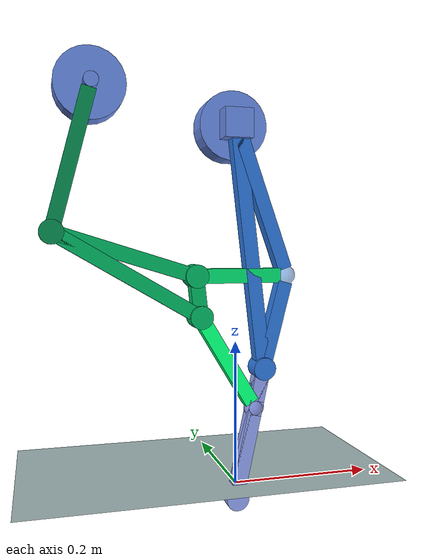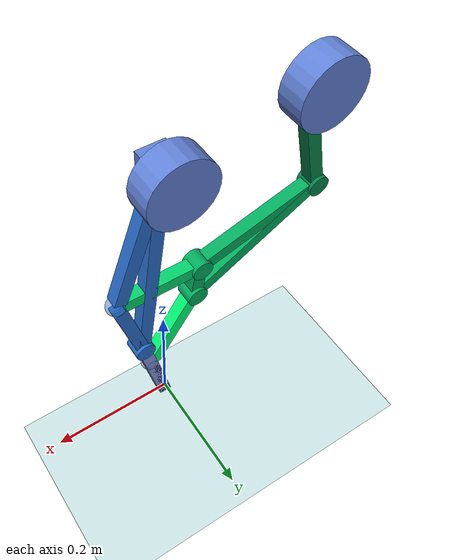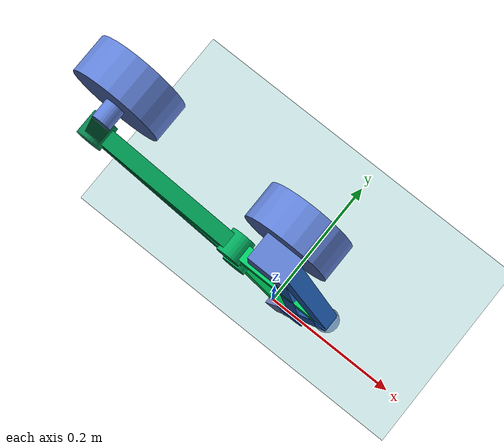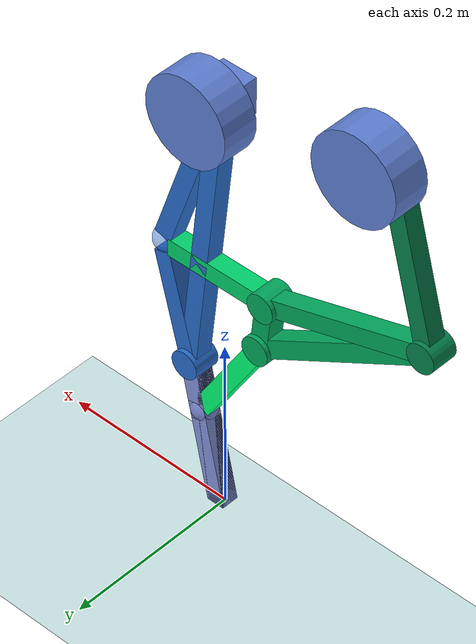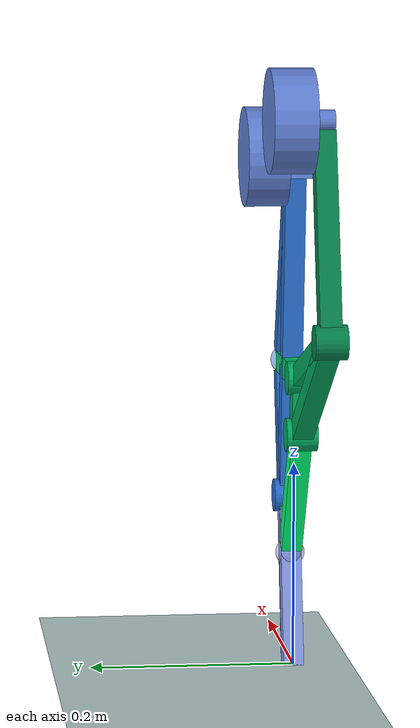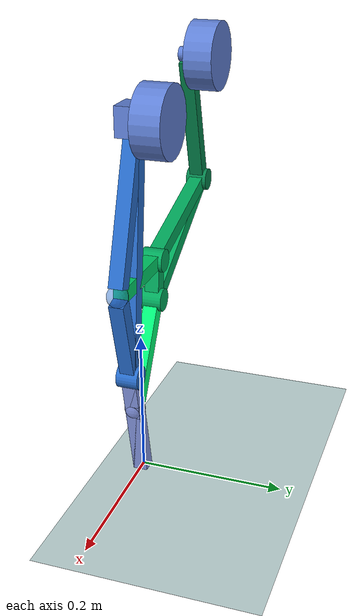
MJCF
<?xml version="1.0" encoding="utf-8"?>
<mujoco model="robot_2">
  <compiler angle="radian" inertiafromgeom="true" coordinate="local" />
  <option timestep="0.01" gravity="0 0 -9.81" integrator="RK4" />
  <size njmax="500" nconmax="100" />
  <worldbody>
    <geom name="floor" type="plane" size="10 10 0.1" pos="0 0 0" rgba="0.8 0.9 0.9 1" />
    <light name="light1" pos="0 0 3" dir="0 0 -1" directional="true" />
    <body name="robot_root" pos="0 0 0.5" quat="1 0 0 0">
      <body name="G">
        <geom name="G_vis0" type="box" rgba="0.37254901960784315 0.5019607843137255 0.8352941176470589 1.0" contype="1" conaffinity="1" pos="0.0 0.0 0.0" quat="1.0 0.0 0.0 0.0" size="0.02 0.02 0.02" />
        <inertial pos="0.0 0.0 0.0" mass="0.010434248887524934" diaginertia="2.782466370006649e-06 2.782466370006649e-06 2.782466370006649e-06" />
        <body name="L6" pos="0.0 0.0 0.0" quat="0.05740672490601135 5.76162120280019e-17 0.9983508741597643 5.76162120280019e-17">
          <joint name="Main_ground" type="hinge" axis="0 1 0" range="-3.141592653589793 3.141592653589793" damping="0.1" />
          <geom name="L6_vis0" type="box" rgba="0.1568627450980392 0.42745098039215684 0.8 1.0" contype="1" conaffinity="1" pos="8.008223628835724e-17 0.0 0.17012128026793125" quat="1.0 0.0 0.0 0.0" size="0.009999999776482582 0.009999999776482582 0.16012128049144866" />
          <geom name="L6_vis1" type="box" rgba="0.1568627450980392 0.42745098039215684 0.8 1.0" contype="1" conaffinity="1" pos="-0.024327343078314124 0.0 0.1071764065687967" quat="0.9937790602856788 0.0 -0.1113695619894114 0.0" size="0.009999999776482582 0.009999999776482582 0.09990269239368224" />
          <geom name="L6_vis2" type="box" rgba="0.1568627450980392 0.42745098039215684 0.8 1.0" contype="1" conaffinity="1" pos="-0.024327343078314044 0.0 0.27729768683672795" quat="0.18335811086497625 -4.896677205692733e-17 -0.9830461856800152 4.896677205692733e-17" size="0.009999999776482582 0.009999999776482582 0.05748241827629619" />
          <inertial pos="-0.01622 0.0 0.18487" mass="0.16173688658481772" diaginertia="0.02191345675655164 0.0223761845142554 0.0004735102163274033" />
          <body name="L7" pos="1.6016447257671449e-16 0.0 0.3402425605358625" quat="0.9867473260080689 0.0 0.1622643356253175 0.0">
            <joint name="Main_knee" type="hinge" axis="0 1 0" range="-3.141592653589793 3.141592653589793" damping="0.1" />
            <geom name="L7_vis0" type="box" rgba="0.5176470588235295 0.5843137254901961 0.8705882352941177 1.0" contype="1" conaffinity="1" pos="-6.938893903907228e-18 0.0 0.028385080257945366" quat="1.0 0.0 0.0 0.0" size="0.009999999776482582 0.009999999776482582 0.018385080481462784" />
            <geom name="L7_vis1" type="box" rgba="0.5176470588235295 0.5843137254901961 0.8705882352941177 1.0" contype="1" conaffinity="1" pos="-3.469446951953614e-17 0.0 0.12145091716924164" quat="1.0 0.0 0.0 0.0" size="0.009999999776482582 0.009999999776482582 0.054680756876868325" />
            <geom name="L7_vis2" type="box" rgba="0.5176470588235295 0.5843137254901961 0.8705882352941177 1.0" contype="1" conaffinity="1" pos="-2.7755575615628914e-17 0.0 0.09306583691129627" quat="1.0 0.0 0.0 0.0" size="0.009999999776482582 0.009999999776482582 0.08306583713481369" />
            <inertial pos="-0.0 0.0 0.08097" mass="0.04839422216852606" diaginertia="0.012721123994364246 0.012745589044769032 2.7691331737280837e-05" />
            <body name="EE" pos="-5.551115123125783e-17 0.0 0.18613167382259255" quat="0.10535080902060162 5.444071275446129e-17 0.9944351195722648 5.444071275446129e-17">
              <geom name="EE_vis0" type="sphere" rgba="0.6431372549019608 0.6666666666666666 0.9058823529411765 1.0" contype="1" conaffinity="1" pos="0.0 0.0 0.0" quat="1.0 0.0 0.0 0.0" size="0.002142857142857143" />
              <inertial pos="0.0 0.0 0.0" mass="2.6790549596939203e-05" diaginertia="4.920713191274548e-11 4.920713191274548e-11 4.920713191274548e-11" />
            </body>
            <body name="Main_ee_L7Unit" pos="-5.551115123125783e-17 0.0 0.18613167382259255" quat="0.07449427146195642 0.07449427146195635 0.7031718164996036 -0.7031718164996037">
              <geom name="Main_ee_L7Unit_vis0" type="cylinder" rgba="0.5176470588235295 0.5843137254901961 0.8705882352941177 0.9" contype="1" conaffinity="1" size="0.016 0.015" />
              <inertial pos="0 0 0" mass="0.1" diaginertia="0.00065 0.00065 0.0008" />
            </body>
            <body name="Main_connection_2_L7Pseudo" pos="0.0 0.0 0.05677016051589075" quat="0.930230301061354 0.0 -0.366976275782649 0.0">
              <geom name="Main_connection_2_L7Pseudo_vis0" type="sphere" rgba="0.5176470588235295 0.5843137254901961 0.8705882352941177 0.5" contype="1" conaffinity="1" size="0.01428571396640369" />
              <inertial pos="0 0 0" mass="0.05" diaginertia="4.08163247059803e-06 4.08163247059803e-06 4.08163247059803e-06" />
            </body>
          </body>
          <body name="Main_knee_L6Unit" pos="1.6016447257671449e-16 0.0 0.3402425605358625" quat="0.6977357255379986 0.6977357255379985 0.11473821206539198 -0.11473821206539196">
            <geom name="Main_knee_L6Unit_vis0" type="cylinder" rgba="0.1568627450980392 0.42745098039215684 0.8 0.9" contype="1" conaffinity="1" size="0.016 0.015" />
            <inertial pos="0 0 0" mass="0.1" diaginertia="0.00065 0.00065 0.0008" />
          </body>
          <body name="Main_connection_1_L6Pseudo" pos="-0.04865468615662824 0.0 0.2143528131375934" quat="0.746533357588638 0.0 -0.6653479886551358 0.0">
            <geom name="Main_connection_1_L6Pseudo_vis0" type="sphere" rgba="0.1568627450980392 0.42745098039215684 0.8 0.5" contype="1" conaffinity="1" size="0.01428571396640369" />
            <inertial pos="0 0 0" mass="0.05" diaginertia="4.08163247059803e-06 4.08163247059803e-06 4.08163247059803e-06" />
          </body>
        </body>
        <body name="Main_ground_GActuator" pos="0.0 0.029999999776482583 0.0" quat="0.040592684466751336 0.04059268446675125 0.7059406731218868 -0.7059406731218869">
          <geom name="Main_ground_GActuator_vis0" type="cylinder" rgba="0.37254901960784315 0.5019607843137255 0.8352941176470589 0.9" contype="1" conaffinity="1" size="0.048 0.02" />
          <inertial pos="0 0 0" mass="0.44" diaginertia="0.0067466666666666664 0.0067466666666666664 0.01056" />
        </body>
        <body name="Main_ground_GUnit" pos="0.0 0.0 0.0" quat="0.040592684466751336 0.04059268446675125 0.7059406731218868 -0.7059406731218869">
          <geom name="Main_ground_GUnit_vis0" type="cylinder" rgba="0.37254901960784315 0.5019607843137255 0.8352941176470589 0.9" contype="1" conaffinity="1" size="0.009999999776482582 0.009999999776482582" />
          <inertial pos="0 0 0" mass="0.1" diaginertia="0.00041666665735344094 0.00041666665735344094 0.0004999999888241291" />
        </body>
        <body name="L3" pos="-0.195 0.0 0.04680000000000001" quat="-0.12993279108591807 6.866935021292796e-17 0.9915228034698058 6.866935021292796e-17">
          <joint name="Ground_connection" type="hinge" axis="0 1 0" range="-3.141592653589793 3.141592653589793" damping="0.1" />
          <geom name="L3_vis0" type="box" rgba="0.01568627450980392 0.5058823529411764 0.29411764705882354 1.0" contype="1" conaffinity="1" pos="0.0 0.0 0.10091" quat="1.0 0.0 0.0 0.0" size="0.01 0.01 0.09090713552569016" />
          <inertial pos="0.0 0.0 0.10091" mass="0.04727171047335888" diaginertia="0.0001317952193855673 0.0001317952193855673 3.151447364890592e-06" />
          <body name="L4" pos="2.7755575615628914e-17 0.0 0.20181427105138033" quat="0.7961296417790595 0.0 -0.6051260971737595 0.0">
            <joint name="branch_0" type="hinge" axis="0 1 0" range="-3.141592653589793 3.141592653589793" damping="0.1" />
            <geom name="L4_vis0" type="box" rgba="0.0 0.6627450980392157 0.3607843137254902 1.0" contype="1" conaffinity="1" pos="-0.022628432928209194 0.0 0.21059178040871757" quat="0.44808742985417144 -2.7303641841988502e-17 -0.8939897399896057 2.7303641841988502e-17" size="0.009999999776482582 0.009999999776482582 0.018244194361428292" />
            <geom name="L4_vis1" type="box" rgba="0.0 0.6627450980392157 0.3607843137254902 1.0" contype="1" conaffinity="1" pos="0.0 0.0 0.1137470517475068" quat="1.0 0.0 0.0 0.0" size="0.009999999776482582 0.009999999776482582 0.10374705197102424" />
            <geom name="L4_vis2" type="box" rgba="0.0 0.6627450980392157 0.3607843137254902 1.0" contype="1" conaffinity="1" pos="-0.022628432928209194 0.0 0.09684472866121073" quat="0.11451756425717269 5.3817327657966684e-17 0.9934212235887677 5.3817327657966684e-17" size="0.009999999776482582 0.009999999776482582 0.08945324273601672" />
            <inertial pos="-0.01509 0.0 0.14039" mass="0.11082958592606866" diaginertia="0.012959578924386614 0.014870272115856353 0.001918081830201178" />
            <body name="L5" pos="-0.04525686585641839 0.0 0.1936894573224215" quat="0.9648892015411091 0.0 -0.26265724575834726 0.0">
              <joint name="branch_1" type="hinge" axis="0 1 0" range="-3.141592653589793 3.141592653589793" damping="0.1" />
              <geom name="L5_vis0" type="box" rgba="0.0 0.8274509803921568 0.4196078431372549 1.0" contype="1" conaffinity="1" pos="0.0 0.0 0.065" quat="1.0 0.0 0.0 0.0" size="0.01 0.01 0.055" />
              <inertial pos="0.0 0.0 0.065" mass="0.028600000000000004" diaginertia="2.9791666666666668e-05 2.9791666666666668e-05 1.9066666666666671e-06" />
              <body name="Main_connection_1_L5Pseudo" pos="2.7755575615628914e-17 0.0 0.13" quat="1.0 0.0 0.0 0.0">
                <joint name="Main_connection_1_L5_revolute" type="hinge" axis="0 1 0" range="-3.141592653589793 3.141592653589793" damping="0.1" />
                <geom name="Main_connection_1_L5Pseudo_vis0" type="sphere" rgba="0.0 0.8274509803921568 0.4196078431372549 0.5" contype="1" conaffinity="1" size="0.014285714285714287" />
                <inertial pos="0 0 0" mass="0.05" diaginertia="4.081632653061226e-06 4.081632653061226e-06 4.081632653061226e-06" />
              </body>
            </body>
            <body name="branch_1_L4Unit" pos="-0.04525686585641839 0.0 0.1936894573224215" quat="0.6822796975033918 0.6822796975033916 -0.18572671960350884 0.18572671960350878">
              <geom name="branch_1_L4Unit_vis0" type="cylinder" rgba="0.0 0.6627450980392157 0.3607843137254902 0.9" contype="1" conaffinity="1" size="0.016 0.015" />
              <inertial pos="0 0 0" mass="0.1" diaginertia="0.00065 0.00065 0.0008" />
            </body>
            <body name="L8" pos="0.0 0.0 0.22749410349501362" quat="0.9690574069405038 0.0 0.24683545542273044 0.0">
              <joint name="branch_2" type="hinge" axis="0 1 0" range="-3.141592653589793 3.141592653589793" damping="0.1" />
              <geom name="L8_vis0" type="box" rgba="0.0 1.0 0.4666666666666667 1.0" contype="1" conaffinity="1" pos="0.0 0.0 0.0758" quat="1.0 0.0 0.0 0.0" size="0.01 0.01 0.06580237463298892" />
              <inertial pos="0.0 0.0 0.0758" mass="0.03421723480915424" diaginertia="5.0526908379020675e-05 5.0526908379020675e-05 2.2811489872769493e-06" />
              <body name="Main_connection_2_L8Pseudo" pos="0.0 0.0 0.1516047492659778" quat="1.0 0.0 0.0 0.0">
                <joint name="Main_connection_2_L8_revolute" type="hinge" axis="0 1 0" range="-3.141592653589793 3.141592653589793" damping="0.1" />
                <geom name="Main_connection_2_L8Pseudo_vis0" type="sphere" rgba="0.0 1.0 0.4666666666666667 0.5" contype="1" conaffinity="1" size="0.014285714285714287" />
                <inertial pos="0 0 0" mass="0.05" diaginertia="4.081632653061226e-06 4.081632653061226e-06 4.081632653061226e-06" />
              </body>
            </body>
            <body name="branch_2_L4Unit" pos="0.0 0.0 0.22749410349501362" quat="0.6852270638066821 0.6852270638066817 0.17453902436668242 -0.1745390243666825">
              <geom name="branch_2_L4Unit_vis0" type="cylinder" rgba="0.0 0.6627450980392157 0.3607843137254902 0.9" contype="1" conaffinity="1" size="0.016 0.015" />
              <inertial pos="0 0 0" mass="0.1" diaginertia="0.00065 0.00065 0.0008" />
            </body>
          </body>
          <body name="branch_0_L3Unit" pos="2.7755575615628914e-17 0.0 0.20181427105138033" quat="0.56294866840559 0.5629486684055898 -0.4278887667845151 0.42788876678451504">
            <geom name="branch_0_L3Unit_vis0" type="cylinder" rgba="0.01568627450980392 0.5058823529411764 0.29411764705882354 0.9" contype="1" conaffinity="1" size="0.016 0.015" />
            <inertial pos="0 0 0" mass="0.1" diaginertia="0.00065 0.00065 0.0008" />
          </body>
        </body>
        <body name="Ground_connection_GActuator" pos="-0.195 0.03 0.04680000000000001" quat="0.09187635767534795 0.09187635767534752 -0.7011124980345963 0.701112498034596">
          <geom name="Ground_connection_GActuator_vis0" type="cylinder" rgba="0.37254901960784315 0.5019607843137255 0.8352941176470589 0.9" contype="1" conaffinity="1" size="0.048 0.02" />
          <inertial pos="0 0 0" mass="0.44" diaginertia="0.0067466666666666664 0.0067466666666666664 0.01056" />
        </body>
        <body name="Ground_connection_GUnit" pos="-0.195 0.0 0.04680000000000001" quat="0.09187635767534795 0.09187635767534752 -0.7011124980345963 0.701112498034596">
          <geom name="Ground_connection_GUnit_vis0" type="cylinder" rgba="0.37254901960784315 0.5019607843137255 0.8352941176470589 0.9" contype="1" conaffinity="1" size="0.01 0.01" />
          <inertial pos="0 0 0" mass="0.1" diaginertia="0.00041666666666666664 0.00041666666666666664 0.0005" />
        </body>
      </body>
    </body>
  </worldbody>
  <actuator>
    <motor name="Main_ground_motor" joint="Main_ground" gear="80" ctrlrange="-1.0 1.0" forcerange="-50 50" />
    <motor name="Main_knee_motor" joint="Main_knee" gear="150" ctrlrange="-1.0 1.0" forcerange="-50 50" />
    <motor name="Ground_connection_motor" joint="Ground_connection" gear="80" ctrlrange="-1.0 1.0" forcerange="-50 50" />
    <motor name="branch_0_motor" joint="branch_0" gear="1" ctrlrange="-1.0 1.0" forcerange="-50 50" />
    <motor name="branch_1_motor" joint="branch_1" gear="1" ctrlrange="-1.0 1.0" forcerange="-50 50" />
    <motor name="Main_connection_1_L5_revolute_motor" joint="Main_connection_1_L5_revolute" gear="1" ctrlrange="-1.0 1.0" forcerange="-50 50" />
    <motor name="branch_2_motor" joint="branch_2" gear="1" ctrlrange="-1.0 1.0" forcerange="-50 50" />
    <motor name="Main_connection_2_L8_revolute_motor" joint="Main_connection_2_L8_revolute" gear="1" ctrlrange="-1.0 1.0" forcerange="-50 50" />
  </actuator>
</mujoco>
